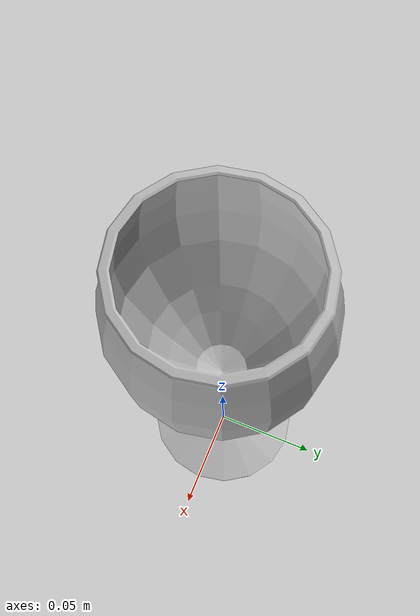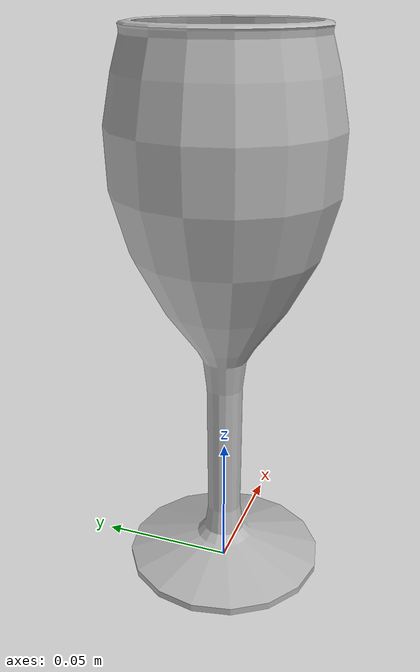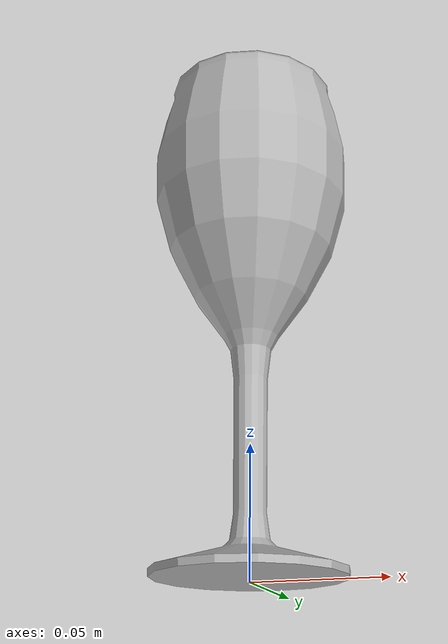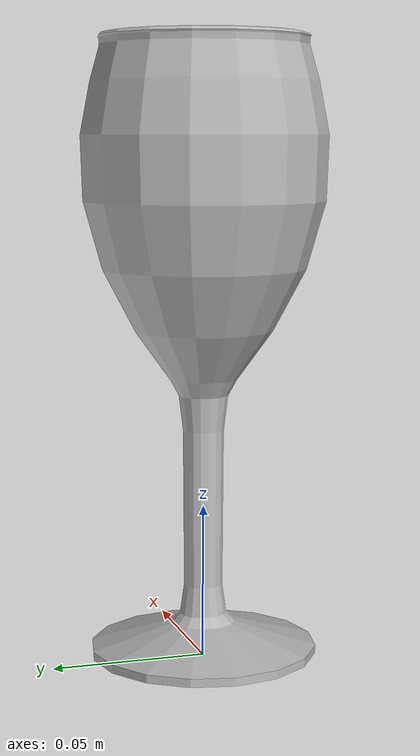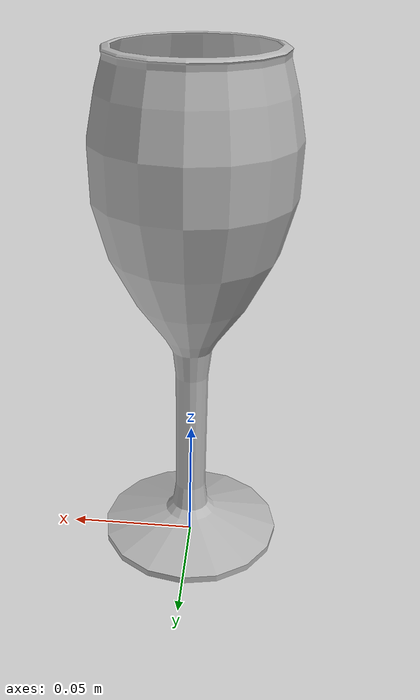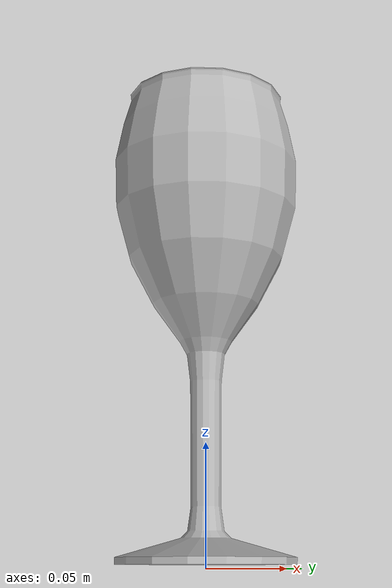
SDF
<?xml version='1.0'?>
<sdf version='1.4'>
  <model name='244'>
    <pose>0 0 0 0 0 0</pose>
    <static>true</static>
    <link name='link'>
      <collision name='collision'>
        <pose>0 0 0 0 0 0</pose>
        <geometry>
          <box>
            <size>0.0768664 0.0790001 2</size>
          </box>
        </geometry>
      </collision>
      <visual name='visual'>
        <pose>0 0 0 0 0 0</pose>
        <geometry>
          <mesh><uri>model://244/244.dae</uri></mesh>
        </geometry>
      </visual>
    </link>
  </model>
</sdf>
